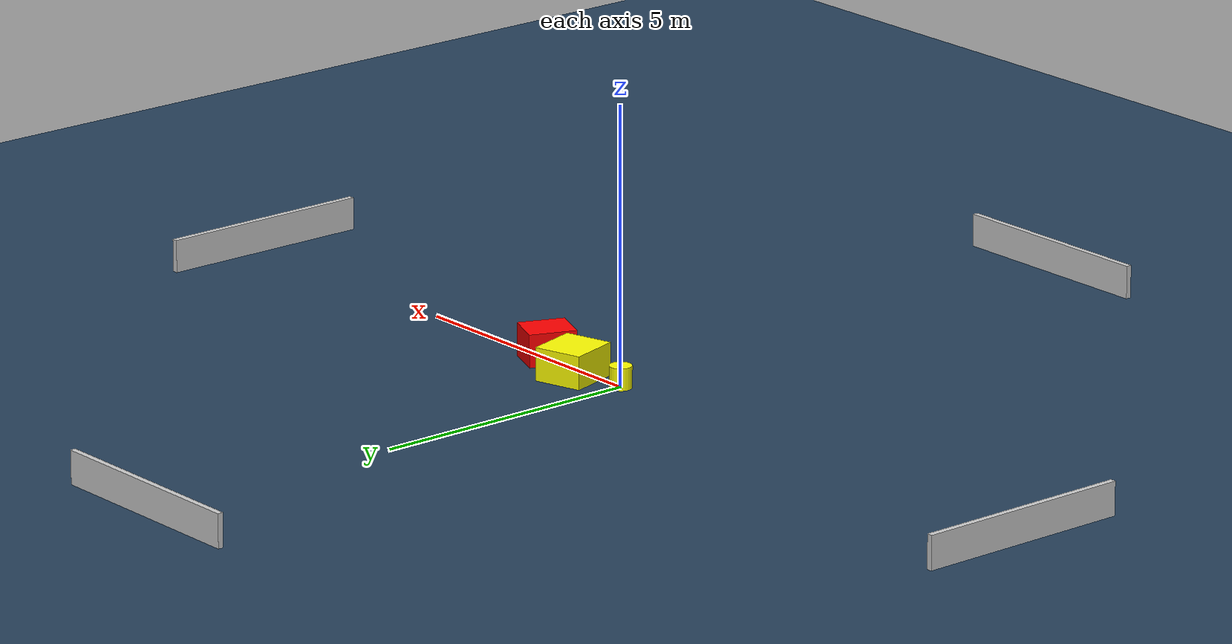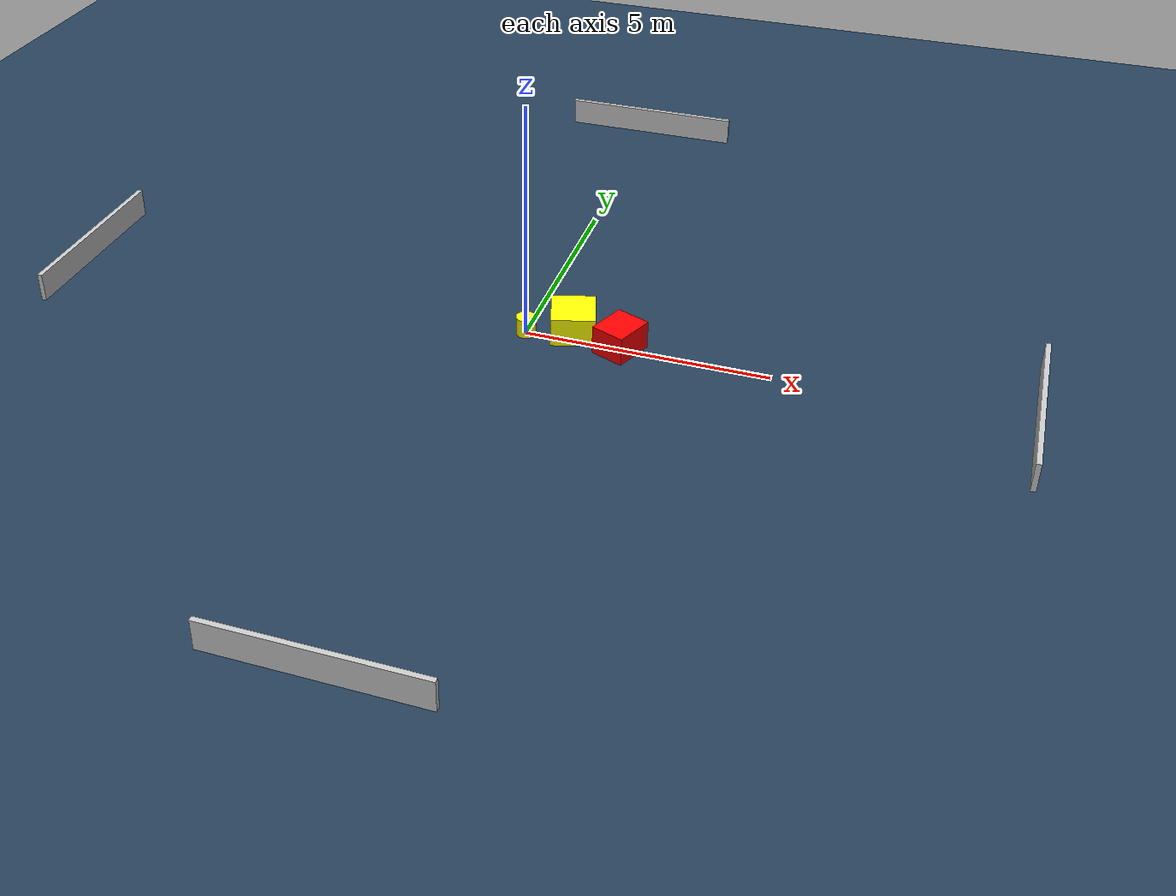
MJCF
<?xml version="1.0" ?>
<mujoco model="generated_environment">
  <option timestep="0.01" integrator="RK4" cone="elliptic"/>
  <default>
    <geom density="1"/>
  </default>
  <asset>
    <texture builtin="gradient" height="3072" name="skybox" rgb1="0.3 0.5 0.7" rgb2="0 0 0" type="skybox" width="512"/>
    <texture builtin="checker" height="300" name="groundplane" rgb1="0.2 0.3 0.4" rgb2="0.1 0.2 0.3" type="2d" width="300"/>
    <material name="groundplane" reflectance="0.2" texrepeat="5 5" texture="groundplane"/>
  </asset>
  <worldbody>
    <light dir="0 0 -1" directional="true" pos="0 0 1.5"/>
    <geom condim="3" friction="0.5 0.005 0.001" material="groundplane" name="floor" pos="0 0 0" size="0 0 0.05" type="plane"/>
    <body name="walls">
      <geom name="wall_1" condim="4" pos="-10.0 0.0 0.3" rgba="0.800000011920929 0.800000011920929 0.800000011920929 1.0" size="0.05 2.0 0.3" type="box"/>
      <geom name="wall_2" condim="4" pos="10.0 0.0 0.3" rgba="0.800000011920929 0.800000011920929 0.800000011920929 1.0" size="0.05 2.0 0.3" type="box"/>
      <geom name="wall_3" condim="4" pos="0.0 -10.0 0.3" rgba="0.800000011920929 0.800000011920929 0.800000011920929 1.0" size="2.0 0.05 0.3" type="box"/>
      <geom name="wall_4" condim="4" pos="0.0 10.0 0.3" rgba="0.800000011920929 0.800000011920929 0.800000011920929 1.0" size="2.0 0.05 0.3" type="box"/>
    </body>
    <body name="robot">
      <joint name="joint_x" type="slide" pos="0 0 0" axis="1 0 0"/>
      <joint name="joint_y" type="slide" pos="0 0 0" axis="0 1 0"/>
      <geom name="robot" type="cylinder" pos="0.0 0.0 0.2" size="0.2 0.2 0.0" mass="5.0" friction="1.0 0.005 0.0001" condim="4" rgba="1.0 1.0 0.0 1.0"/>
    </body>
    <body name="obstacle_1_movable">
      <geom name="obstacle_1_movable" condim="4" pos="0.9046931396226596 0.3033450738859631 0.3" euler="0 0 15.834474555366498" friction="0.0 0.005 0.001" rgba="1.0 1.0 0.0 1.0" size="0.4500256370404082 0.47625587885146137 0.3" type="box" mass="0.1"/>
      <joint type="free"/>
    </body>
    <body name="obstacle_2_static">
      <geom name="obstacle_2_static" condim="4" pos="1.9605800289019937 0.012333245123423658 0.3" euler="0 0 337.6176779406716" friction="0.0 0.005 0.001" rgba="1.0 0.0 0.0 1.0" size="0.3633193799128538 0.42865350588175827 0.3" type="box"/>
    </body>
  </worldbody>
  <actuator>
    <motor name="actuator_x" joint="joint_x" gear="1" ctrlrange="-1 1"/>
    <motor name="actuator_y" joint="joint_y" gear="1" ctrlrange="-1 1"/>
  </actuator>
</mujoco>
